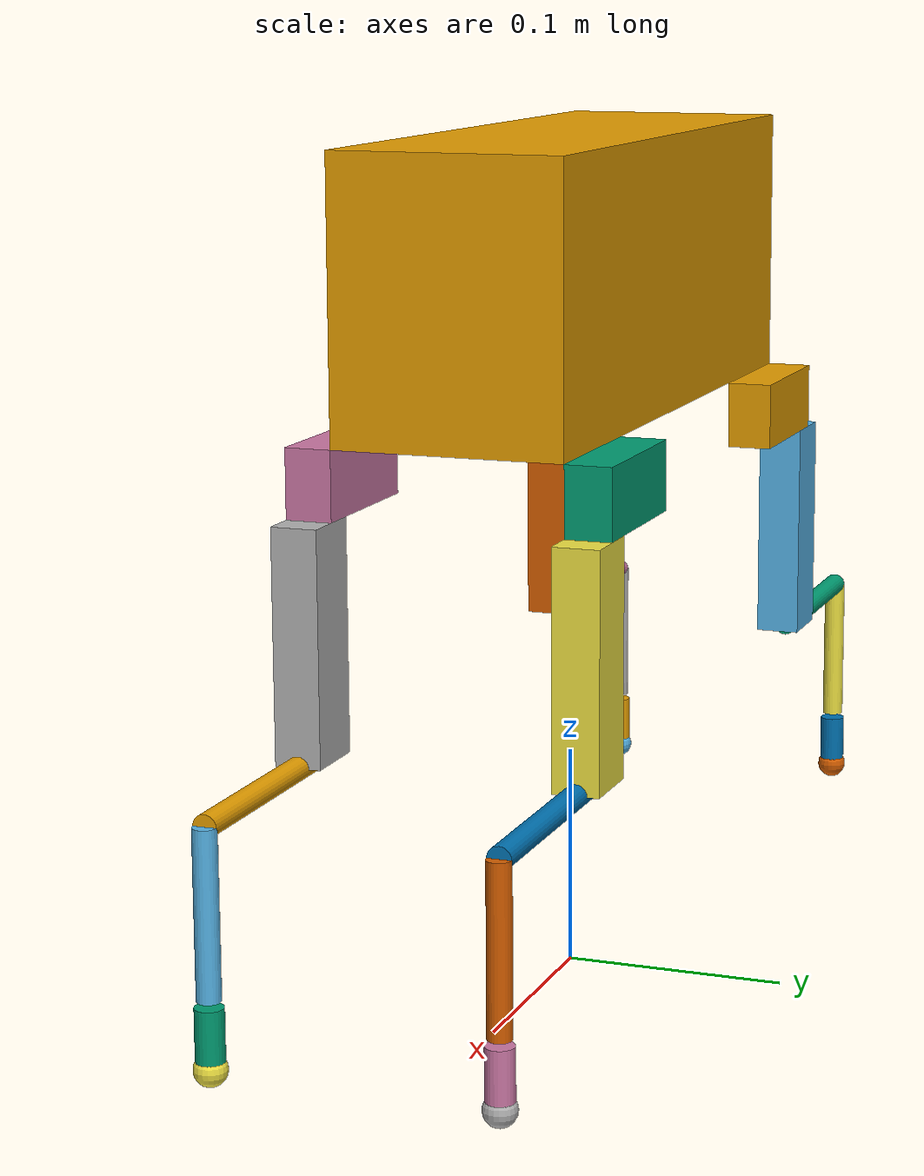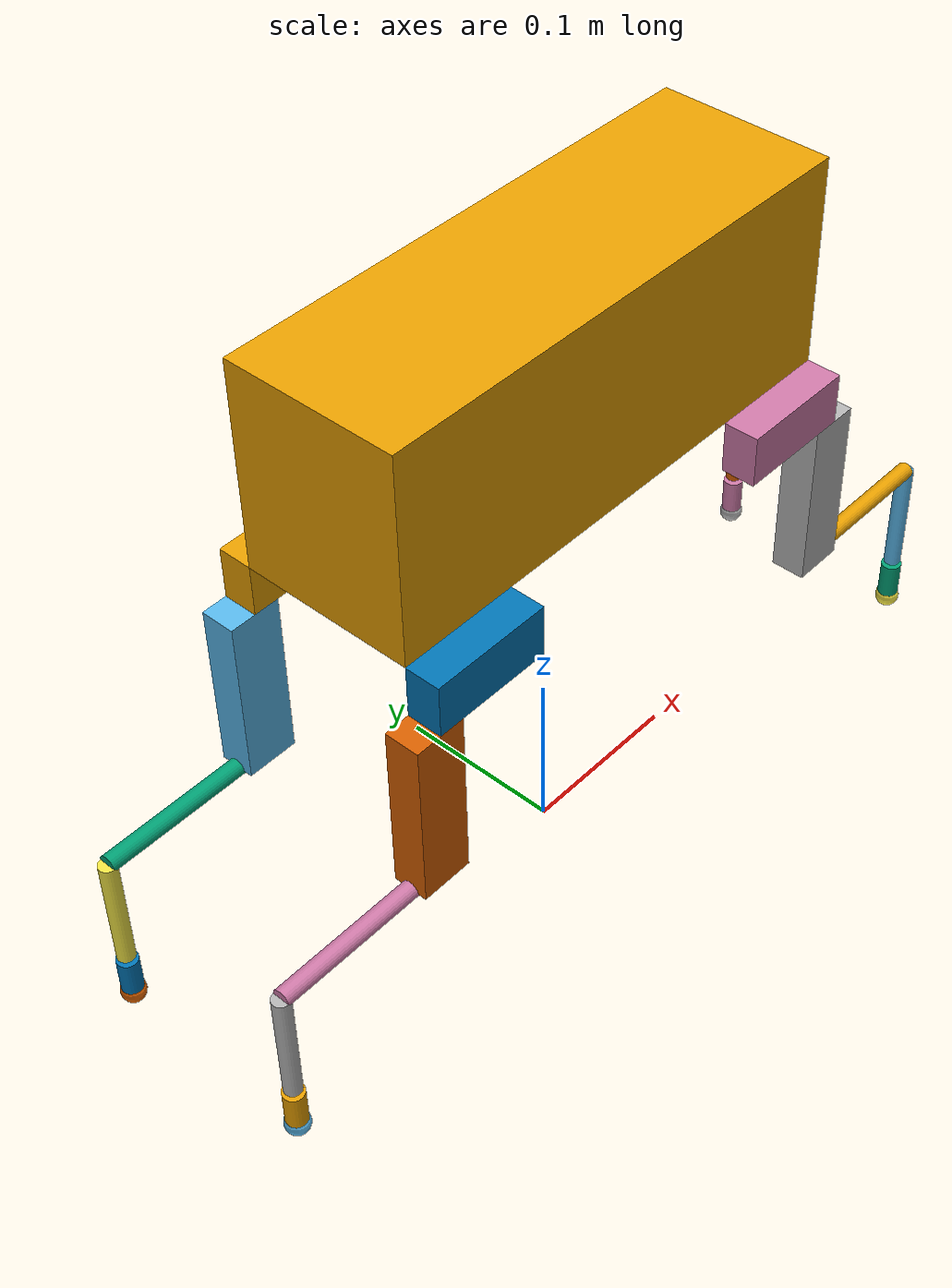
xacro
<?xml version="1.0" ?>

<robot name="quad">
    <link name="base_link">
    <visual>
    <origin rpy="0 0 0" xyz="0 0 0.32"/>
      <geometry>
        <box size="0.3 0.1 0.12"/>
      </geometry>
    </visual>
    <collision>
    <origin rpy="0 0 0" xyz="0 0 0.32"/>
      <geometry>
       <box size="0.3 0.1 0.12"/>
      </geometry>
    </collision>
    <inertial>
      <mass value="3"/>
      <inertia ixx="0.01366667" ixy="0.0" ixz="0.0" iyy="0.01293333" iyz="0.0" izz="4.06666667e-3"/>
        <origin  xyz="0 0 0.32"/>
    </inertial>
  </link>

<link name="base_sensor_weight">
    <visual>
    <origin rpy="0 0 0" xyz="0 0 0"/>
      <geometry>
        <sphere radius="0.01"/>
      </geometry>
    </visual>
     <collision>
    <origin rpy="0 0 0" xyz="0 0 0"/>
      <geometry>
        <sphere radius="0.01"/>
      </geometry>
    </collision>
    <inertial>
      <mass value="0.1"/>
      <inertia ixx="4e-6" ixy="0.0" ixz="0.0" iyy="4e-6" iyz="0.0" izz="4e-6"/>
    </inertial>
  </link>
  <joint name="base_sensor" type="fixed">
    <parent link="base_link"/>
    <child link="base_sensor_weight"/>
    <origin rpy="0 0 0" xyz="0 0 0.32"/>
    <joint_properties damping="0.0" friction="0.05"/>
  </joint>

<link name="back_right_shoulder_blade">
    <visual>
    <origin rpy="0 0 0" xyz="-0.035 0.01 -0.015"/>
      <geometry>
        <box size="0.07 0.02 0.03"/>
      </geometry>
    </visual>
    <collision>
    <origin rpy="0 0 0" xyz="-0.035 0.01 -0.015"/>
      <geometry>
        <box size="0.07 0.02 0.03"/>
      </geometry>
    </collision>
    <inertial>
      <mass value="0.07"/>
      <inertia ixx="3.38333333e-5" ixy="0.0" ixz="0.0" iyy="3.09166667e-5" iyz="0.0" izz="7.58333333e-6"/>
    </inertial>
  </link>
  <joint name="back_right_base_to_shoulder" type="revolute">
    <axis xyz="1 0 0"/>
    <parent link="base_link"/>
    <child link="back_right_shoulder_blade"/>
    <origin rpy="0 0 0" xyz="0.15 0.05 0.26"/>
    <limit effort="200" velocity="7.4799" lower="-0.24497866" upper="0.5235988" />
    <joint_properties damping="0.5" friction="0.05"/>
  </joint>

  <link name="back_right_upper">
    <visual>
    <origin rpy="0 0 0" xyz="0 0 -0.05"/>
      <geometry>
        <box size="0.03 0.02 0.1"/>
      </geometry>
    </visual>
    <collision>
    <origin rpy="0 0 0" xyz="0 0 -0.05"/>
      <geometry>
        <box size="0.03 0.02 0.1"/>
      </geometry>
    </collision>
    <inertial>
      <mass value="0.2"/>
      <inertia ixx="2.48333333e-4" ixy="0.0" ixz="0.0" iyy="8.83333333e-5" iyz="0.0" izz="1.73333333e-4"/>
    </inertial>
  </link>
  <joint name="back_right_shoulder" type="revolute">
    <axis xyz="0 1 0"/>
    <parent link="back_right_shoulder_blade"/>
    <child link="back_right_upper"/>
    <origin rpy="0 0 0" xyz="-0.0 0.01 -0.03"/>
    <limit effort="530" velocity="8.7266" lower="-1.2217304763960306" upper="1.5707963267948966" />
    <joint_properties damping="0.0" friction="0.05"/>
  </joint>

<link name="back_right_mid">
    <visual>
    <origin rpy="0 0 0" xyz="0 0 -0.05"/>
      <geometry>
        <cylinder length="0.1" radius="0.005"/>
      </geometry>
    </visual>
    <collision>
    <origin rpy="0 0 0" xyz="0 0 -0.05"/>
      <geometry>
        <cylinder length="0.1" radius="0.005"/>
      </geometry>
    </collision>
    <inertial>
      <mass value="0.075"/>
      <inertia ixx="1.05e-4" ixy="0.0" ixz="0.0" iyy="0.0" iyz="0.0" izz="1.05e-4"/>
    </inertial>
  </link>
  <joint name="back_right_knee" type="revolute">
    <axis xyz="0 1 0"/>
    <parent link="back_right_upper"/>
    <child link="back_right_mid"/>
    <origin rpy="0 0 0" xyz="0 0 -0.1"/>
    <limit effort="530" velocity="8.7266" lower="-0.5235988" upper="-2.6179938" />
    <joint_properties damping="0.0" friction="0.05"/>
  </joint>

<link name="back_right_lower">
    <visual>
    <origin rpy="0 0 0" xyz="0 0 -0.035"/>
      <geometry>
        <cylinder length="0.07" radius="0.005"/>
      </geometry>
    </visual>
    <collision>
    <origin rpy="0 0 0" xyz="0 0 -0.035"/>
      <geometry>
        <cylinder length="0.07" radius="0.005"/>
      </geometry>
    </collision>
    <inertial>
      <mass value="0.075"/>
      <inertia ixx="1.05e-4" ixy="0.0" ixz="0.0" iyy="0.0" iyz="0.0" izz="1.05e-4"/>
    </inertial>
  </link>
  <joint name="back_right_heel" type="revolute">
    <axis xyz="0 1 0"/>
    <parent link="back_right_mid"/>
    <child link="back_right_lower"/>
    <origin rpy="0 0 0" xyz="0 0 -0.1"/>
    <limit effort="530" velocity="8.7266" lower="0.5235988" upper="2.6179938" />
    <joint_properties damping="0.0" friction="0.05"/>
  </joint>

<link name="back_right_dampener">
    <visual>
    <origin rpy="0 0 0" xyz="0 0 -0.05"/>
      <geometry>
        <cylinder length="0.025" radius="0.006"/>
      </geometry>
    </visual>
    <collision>
    <origin rpy="0 0 0" xyz="0 0 -0.05"/>
      <geometry>
        <cylinder length="0.025" radius="0.006"/>
      </geometry>
    </collision>
    <inertial>
      <mass value="0.025"/>
      <inertia ixx="1.05e-4" ixy="0.0" ixz="0.0" iyy="0.0" iyz="0.0" izz="1.05e-4"/>
    </inertial>
  </link>
  <joint name="back_right_damp_joint" type="prismatic">
    <axis xyz="0 0 1"/>
    <parent link="back_right_lower"/>
    <child link="back_right_dampener"/>
    <origin rpy="0 0 0" xyz="0 0 -0.035"/>
    <limit lower="0.0" upper="0.025" />
    <joint_properties damping="0.05" friction="0.05"/>
  </joint>

  <link name="back_right_foot">
    <visual>
    <origin rpy="0 0 0" xyz="0 0 0"/>
      <geometry>
        <sphere radius="0.007"/>
      </geometry>
    </visual>
     <collision>
    <origin rpy="0 0 0" xyz="0 0 0"/>
      <geometry>
        <sphere radius="0.007"/>
      </geometry>
    </collision>
    <inertial>
      <mass value="0"/>
      <inertia ixx="0" ixy="0.0" ixz="0.0" iyy="0.0" iyz="0.0" izz="0"/>
    </inertial>
  </link>
  <joint name="back_right_sensor" type="fixed">
    <parent link="back_right_dampener"/>
    <child link="back_right_foot"/>
    <origin rpy="0 0 0" xyz="0 0 -0.063"/>
    <joint_properties damping="0.0" friction="0.05"/>
  </joint>

<link name="front_right_shoulder_blade">
    <visual>
    <origin rpy="0 0 0" xyz="0.035 0.01 -0.015"/>
      <geometry>
        <box size="0.07 0.02 0.03"/>
      </geometry>
    </visual>
    <collision>
    <origin rpy="0 0 0" xyz="0.035 0.01 -0.015"/>
      <geometry>
        <box size="0.07 0.02 0.03"/>
      </geometry>
    </collision>
    <inertial>
      <mass value="0.07"/>
      <inertia ixx="3.38333333e-5" ixy="0.0" ixz="0.0" iyy="3.09166667e-5" iyz="0.0" izz="7.58333333e-6"/>
    </inertial>
  </link>
  <joint name="front_right_base_to_shoulder" type="revolute">
    <axis xyz="1 0 0"/>
    <parent link="base_link"/>
    <child link="front_right_shoulder_blade"/>
    <origin rpy="0 0 0" xyz="-0.15 0.05 0.26"/>
    <limit effort="200" velocity="7.4799" lower="-0.24497866" upper="0.5235988" />
    <joint_properties damping="0.0" friction="0.05"/>
  </joint>

  <link name="front_right_upper">
    <visual>
    <origin rpy="0 0 0" xyz="0 0 -0.05"/>
      <geometry>
        <box size="0.03 0.02 0.1"/>
      </geometry>
    </visual>
    <collision>
    <origin rpy="0 0 0" xyz="0 0 -0.05"/>
      <geometry>
        <box size="0.03 0.02 0.1"/>
      </geometry>
    </collision>
    <inertial>
      <mass value="0.2"/>
      <inertia ixx="2.48333333e-4" ixy="0.0" ixz="0.0" iyy="8.83333333e-5" iyz="0.0" izz="1.73333333e-4"/>
    </inertial>
  </link>
  <joint name="front_right_shoulder" type="revolute">
    <axis xyz="0 1 0"/>
    <parent link="front_right_shoulder_blade"/>
    <child link="front_right_upper"/>
    <origin rpy="0 0 0" xyz="0.0 0.01 -0.03"/>
    <limit effort="530" velocity="8.7266" lower="-1.5707963267948966" upper="1.2217304763960306" />
    <joint_properties damping="0.0" friction="0.05"/>
  </joint>

<link name="front_right_mid">
    <visual>
    <origin rpy="0 0 0" xyz="0 0 -0.05"/>
      <geometry>
        <cylinder length="0.1" radius="0.005"/>
      </geometry>
    </visual>
    <collision>
    <origin rpy="0 0 0" xyz="0 0 -0.05"/>
      <geometry>
        <cylinder length="0.1" radius="0.005"/>
      </geometry>
    </collision>
    <inertial>
      <mass value="0.075"/>
      <inertia ixx="1.05e-4" ixy="0.0" ixz="0.0" iyy="0.0" iyz="0.0" izz="1.05e-4"/>
    </inertial>
  </link>
  <joint name="front_right_knee" type="revolute">
    <axis xyz="0 1 0"/>
    <parent link="front_right_upper"/>
    <child link="front_right_mid"/>
    <origin rpy="0 0 0" xyz="0 0 -0.1"/>
    <limit effort="530" velocity="8.7266" lower="0.5235988" upper="2.6179938" />
    <joint_properties damping="0.0" friction="0.05"/>
  </joint>

<link name="front_right_lower">
    <visual>
    <origin rpy="0 0 0" xyz="0 0 -0.035"/>
      <geometry>
        <cylinder length="0.07" radius="0.005"/>
      </geometry>
    </visual>
    <collision>
    <origin rpy="0 0 0" xyz="0 0 -0.035"/>
      <geometry>
        <cylinder length="0.07" radius="0.005"/>
      </geometry>
    </collision>
    <inertial>
      <mass value="0.075"/>
      <inertia ixx="1.05e-4" ixy="0.0" ixz="0.0" iyy="0.0" iyz="0.0" izz="1.05e-4"/>
    </inertial>
  </link>
  <joint name="front_right_heel" type="revolute">
    <axis xyz="0 1 0"/>
    <parent link="front_right_mid"/>
    <child link="front_right_lower"/>
    <origin rpy="0 0 0" xyz="0 0 -0.1"/>
    <limit effort="530" velocity="8.7266" lower="-0.5235988" upper="-2.6179938" />
    <joint_properties damping="0.0" friction="0.05"/>
  </joint>

<link name="front_right_dampener">
    <visual>
    <origin rpy="0 0 0" xyz="0 0 -0.05"/>
      <geometry>
        <cylinder length="0.025" radius="0.006"/>
      </geometry>
    </visual>
    <collision>
    <origin rpy="0 0 0" xyz="0 0 -0.05"/>
      <geometry>
        <cylinder length="0.025" radius="0.006"/>
      </geometry>
    </collision>
    <inertial>
      <mass value="0.025"/>
      <inertia ixx="1.05e-4" ixy="0.0" ixz="0.0" iyy="0.0" iyz="0.0" izz="1.05e-4"/>
    </inertial>
  </link>
  <joint name="front_right_damp_joint" type="prismatic">
    <axis xyz="0 0 1"/>
    <parent link="front_right_lower"/>
    <child link="front_right_dampener"/>
    <origin rpy="0 0 0" xyz="0 0 -0.035"/>
    <limit  lower="0.0" upper="0.025" />
    <joint_properties damping="0.05" friction="0.05"/>
  </joint>

  <link name="front_right_foot">
    <visual>
    <origin rpy="0 0 0" xyz="0 0 0"/>
      <geometry>
        <sphere radius="0.007"/>
      </geometry>
    </visual>
     <collision>
    <origin rpy="0 0 0" xyz="0 0 0"/>
      <geometry>
        <sphere radius="0.007"/>
      </geometry>
    </collision>
    <inertial>
      <mass value="0"/>
      <inertia ixx="0" ixy="0.0" ixz="0.0" iyy="0.0" iyz="0.0" izz="0"/>
    </inertial>
  </link>
  <joint name="front_right_sensor" type="fixed">
    <parent link="front_right_dampener"/>
    <child link="front_right_foot"/>
    <origin rpy="0 0 0" xyz="0 0 -0.063"/>
    <joint_properties damping="0.0" friction="0.05"/>
  </joint>

<link name="back_left_shoulder_blade">
    <visual>
    <origin rpy="0 0 0" xyz="-0.035 -0.01 -0.015"/>
      <geometry>
        <box size="0.07 0.02 0.03"/>
      </geometry>
    </visual>
    <collision>
    <origin rpy="0 0 0" xyz="-0.035 -0.01 -0.015"/>
      <geometry>
        <box size="0.07 0.02 0.03"/>
      </geometry>
    </collision>
    <inertial>
      <mass value="0.07"/>
      <inertia ixx="3.38333333e-5" ixy="0.0" ixz="0.0" iyy="3.09166667e-5" iyz="0.0" izz="7.58333333e-6"/>
    </inertial>
  </link>
  <joint name="back_left_base_to_shoulder" type="revolute">
    <axis xyz="1 0 0"/>
    <parent link="base_link"/>
    <child link="back_left_shoulder_blade"/>
    <origin rpy="0 0 0" xyz="0.15 -0.05 0.26"/>
    <limit effort="200" velocity="7.4799" lower="-0.5235988" upper="0.24497866" />
    <joint_properties damping="0.0" friction="0.05"/>
  </joint>

  <link name="back_left_upper">
    <visual>
    <origin rpy="0 0 0" xyz="0 0 -0.05"/>
      <geometry>
        <box size="0.03 0.02 0.1"/>
      </geometry>
    </visual>
    <collision>
    <origin rpy="0 0 0" xyz="0 0 -0.05"/>
      <geometry>
        <box size="0.03 0.02 0.1"/>
      </geometry>
    </collision>
    <inertial>
      <mass value="0.2"/>
      <inertia ixx="2.48333333e-4" ixy="0.0" ixz="0.0" iyy="8.83333333e-5" iyz="0.0" izz="1.73333333e-4"/>
    </inertial>
  </link>
  <joint name="back_left_shoulder" type="revolute">
    <axis xyz="0 1 0"/>
    <parent link="back_left_shoulder_blade"/>
    <child link="back_left_upper"/>
    <origin rpy="0 0 0" xyz="-0.0 -0.01 -0.03"/>
    <limit effort="530" velocity="8.7266" lower="-1.2217304763960306" upper="1.5707963267948966" />
    <joint_properties damping="0.0" friction="0.05"/>
  </joint>

<link name="back_left_mid">
    <visual>
    <origin rpy="0 0 0" xyz="0 0 -0.05"/>
      <geometry>
        <cylinder length="0.1" radius="0.005"/>
      </geometry>
    </visual>
    <collision>
    <origin rpy="0 0 0" xyz="0 0 -0.05"/>
      <geometry>
        <cylinder length="0.1" radius="0.005"/>
      </geometry>
    </collision>
    <inertial>
      <mass value="0.075"/>
      <inertia ixx="1.05e-4" ixy="0.0" ixz="0.0" iyy="0.0" iyz="0.0" izz="1.05e-4"/>
    </inertial>
  </link>
  <joint name="back_left_knee" type="revolute">
    <axis xyz="0 1 0"/>
    <parent link="back_left_upper"/>
    <child link="back_left_mid"/>
    <origin rpy="0 0 0" xyz="0 0 -0.1"/>
    <limit effort="530" velocity="8.7266" lower="-0.5235988" upper="-2.6179938" />
    <joint_properties damping="0.0" friction="0.05"/>
  </joint>

<link name="back_left_lower">
    <visual>
    <origin rpy="0 0 0" xyz="0 0 -0.035"/>
      <geometry>
        <cylinder length="0.07" radius="0.005"/>
      </geometry>
    </visual>
    <collision>
    <origin rpy="0 0 0" xyz="0 0 -0.035"/>
      <geometry>
        <cylinder length="0.07" radius="0.005"/>
      </geometry>
    </collision>
    <inertial>
      <mass value="0.075"/>
      <inertia ixx="1.05e-4" ixy="0.0" ixz="0.0" iyy="0.0" iyz="0.0" izz="1.05e-4"/>
    </inertial>
  </link>
  <joint name="back_left_heel" type="revolute">
    <axis xyz="0 1 0"/>
    <parent link="back_left_mid"/>
    <child link="back_left_lower"/>
    <origin rpy="0 0 0" xyz="0 0 -0.1"/>
    <limit effort="530" velocity="8.7266" lower="0.5235988" upper="2.6179938" />
    <joint_properties damping="0.0" friction="0.05"/>
  </joint>

<link name="back_left_dampener">
    <visual>
    <origin rpy="0 0 0" xyz="0 0 -0.05"/>
      <geometry>
        <cylinder length="0.025" radius="0.006"/>
      </geometry>
    </visual>
    <collision>
    <origin rpy="0 0 0" xyz="0 0 -0.05"/>
      <geometry>
        <cylinder length="0.025" radius="0.006"/>
      </geometry>
    </collision>
    <inertial>
      <mass value="0.025"/>
      <inertia ixx="1.05e-4" ixy="0.0" ixz="0.0" iyy="0.0" iyz="0.0" izz="1.05e-4"/>
    </inertial>
  </link>
  <joint name="back_left_damp_joint" type="prismatic">
    <axis xyz="0 0 1"/>
    <parent link="back_left_lower"/>
    <child link="back_left_dampener"/>
    <origin rpy="0 0 0" xyz="0 0 -0.035"/>
    <limit  lower="0.0" upper="0.025" />
    <joint_properties damping="0.05" friction="0.05"/>
  </joint>

<link name="back_left_foot">
    <visual>
    <origin rpy="0 0 0" xyz="0 0 0"/>
      <geometry>
        <sphere radius="0.007"/>
      </geometry>
    </visual>
     <collision>
    <origin rpy="0 0 0" xyz="0 0 0"/>
      <geometry>
        <sphere radius="0.007"/>
      </geometry>
    </collision>
    <inertial>
      <mass value="0"/>
      <inertia ixx="0" ixy="0.0" ixz="0.0" iyy="0.0" iyz="0.0" izz="0"/>
    </inertial>
  </link>
   <joint name="back_left_sensor" type="fixed">
    <parent link="back_left_dampener"/>
    <child link="back_left_foot"/>
    <origin rpy="0 0 0" xyz="0 0 -0.063"/>
    <joint_properties damping="0.0" friction="0.05"/>
  </joint>

<link name="front_left_shoulder_blade">
    <visual>
    <origin rpy="0 0 0" xyz="0.035 -0.01 -0.015"/>
      <geometry>
        <box size="0.07 0.02 0.03"/>
      </geometry>
    </visual>
    <collision>
    <origin rpy="0 0 0" xyz="0.035 -0.01 -0.015"/>
      <geometry>
        <box size="0.07 0.02 0.03"/>
      </geometry>
    </collision>
    <inertial>
      <mass value="0.07"/>
      <inertia ixx="3.38333333e-5" ixy="0.0" ixz="0.0" iyy="3.09166667e-5" iyz="0.0" izz="7.58333333e-6"/>
    </inertial>
  </link>
  <joint name="front_left_base_to_shoulder" type="revolute">
    <axis xyz="1 0 0"/>
    <parent link="base_link"/>
    <child link="front_left_shoulder_blade"/>
    <origin rpy="0 0 0" xyz="-0.15 -0.05 0.26"/>
    <limit effort="200" velocity="7.4799" lower="-0.5235988" upper="0.24497866" />
    <joint_properties damping="0.0" friction="0.05"/>
  </joint>

  <link name="front_left_upper">
    <visual>
    <origin rpy="0 0 0" xyz="0 0 -0.05"/>
      <geometry>
        <box size="0.03 0.02 0.1"/>
      </geometry>
    </visual>
    <collision>
    <origin rpy="0 0 0" xyz="0 0 -0.05"/>
      <geometry>
        <box size="0.03 0.02 0.1"/>
      </geometry>
    </collision>
    <inertial>
      <mass value="0.2"/>
      <inertia ixx="2.48333333e-4" ixy="0.0" ixz="0.0" iyy="8.83333333e-5" iyz="0.0" izz="1.73333333e-4"/>
    </inertial>
  </link>
  <joint name="front_left_shoulder" type="revolute">
    <axis xyz="0 1 0"/>
    <parent link="front_left_shoulder_blade"/>
    <child link="front_left_upper"/>
    <origin rpy="0 0 0" xyz="0.0 -0.01 -0.03"/>
    <limit effort="530" velocity="8.7266" lower="-1.5707963267948966" upper="1.2217304763960306" />
    <joint_properties damping="0.0" friction="0.05"/>
  </joint>

<link name="front_left_mid">
    <visual>
    <origin rpy="0 0 0" xyz="0 0 -0.05"/>
      <geometry>
        <cylinder length="0.1" radius="0.005"/>
      </geometry>
    </visual>
    <collision>
    <origin rpy="0 0 0" xyz="0 0 -0.05"/>
      <geometry>
        <cylinder length="0.1" radius="0.005"/>
      </geometry>
    </collision>
    <inertial>
      <mass value="0.075"/>
      <inertia ixx="1.05e-4" ixy="0.0" ixz="0.0" iyy="0.0" iyz="0.0" izz="1.05e-4"/>
    </inertial>
  </link>
  <joint name="front_left_knee" type="revolute">
    <axis xyz="0 1 0"/>
    <parent link="front_left_upper"/>
    <child link="front_left_mid"/>
    <origin rpy="0 0 0" xyz="0 0 -0.1"/>
    <limit effort="530" velocity="8.7266" lower="0.5235988" upper="2.6179938" />
    <joint_properties damping="0.0" friction="0.05"/>
  </joint>

<link name="front_left_lower">
    <visual>
    <origin rpy="0 0 0" xyz="0 0 -0.035"/>
      <geometry>
        <cylinder length="0.07" radius="0.005"/>
      </geometry>
    </visual>
    <collision>
    <origin rpy="0 0 0" xyz="0 0 -0.035"/>
      <geometry>
        <cylinder length="0.07" radius="0.005"/>
      </geometry>
    </collision>
    <inertial>
      <mass value="0.075"/>
      <inertia ixx="1.05e-4" ixy="0.0" ixz="0.0" iyy="0.0" iyz="0.0" izz="1.05e-4"/>
    </inertial>
  </link>
  <joint name="front_left_heel" type="revolute">
    <axis xyz="0 1 0"/>
    <parent link="front_left_mid"/>
    <child link="front_left_lower"/>
    <origin rpy="0 0 0" xyz="0 0 -0.1"/>
    <limit effort="530" velocity="8.7266" lower="-0.5235988" upper="-2.6179938" />
    <joint_properties damping="0.0" friction="0.05"/>
  </joint>

<link name="front_left_dampener">
    <visual>
    <origin rpy="0 0 0" xyz="0 0 -0.05"/>
      <geometry>
        <cylinder length="0.025" radius="0.006"/>
      </geometry>
    </visual>
    <collision>
    <origin rpy="0 0 0" xyz="0 0 -0.05"/>
      <geometry>
        <cylinder length="0.025" radius="0.006"/>
      </geometry>
    </collision>
    <inertial>
      <mass value="0.025"/>
      <inertia ixx="1.05e-4" ixy="0.0" ixz="0.0" iyy="0.0" iyz="0.0" izz="1.05e-4"/>
    </inertial>
  </link>
  <joint name="front_left_damp_joint" type="prismatic">
    <axis xyz="0 0 1"/>
    <parent link="front_left_lower"/>
    <child link="front_left_dampener"/>
    <origin rpy="0 0 0" xyz="0 0 -0.035"/>
    <limit  lower="0.0" upper="0.025" />
    <joint_properties damping="0.05" friction="0.05"/>
  </joint>

<link name="front_left_foot">
    <visual>
    <origin rpy="0 0 0" xyz="0 0 0"/>
      <geometry>
        <sphere radius="0.007"/>
      </geometry>
    </visual>
     <collision>
    <origin rpy="0 0 0" xyz="0 0 0"/>
      <geometry>
        <sphere radius="0.007"/>
      </geometry>
    </collision>
    <inertial>
      <mass value="0"/>
      <inertia ixx="0" ixy="0.0" ixz="0.0" iyy="0.0" iyz="0.0" izz="0"/>
    </inertial>
  </link>
   <joint name="front_left_sensor" type="fixed">
    <parent link="front_left_dampener"/>
    <child link="front_left_foot"/>
    <origin rpy="0 0 0" xyz="0 0 -0.063"/>
    <joint_properties damping="0.0" friction="0.05"/>
  </joint>

</robot>
